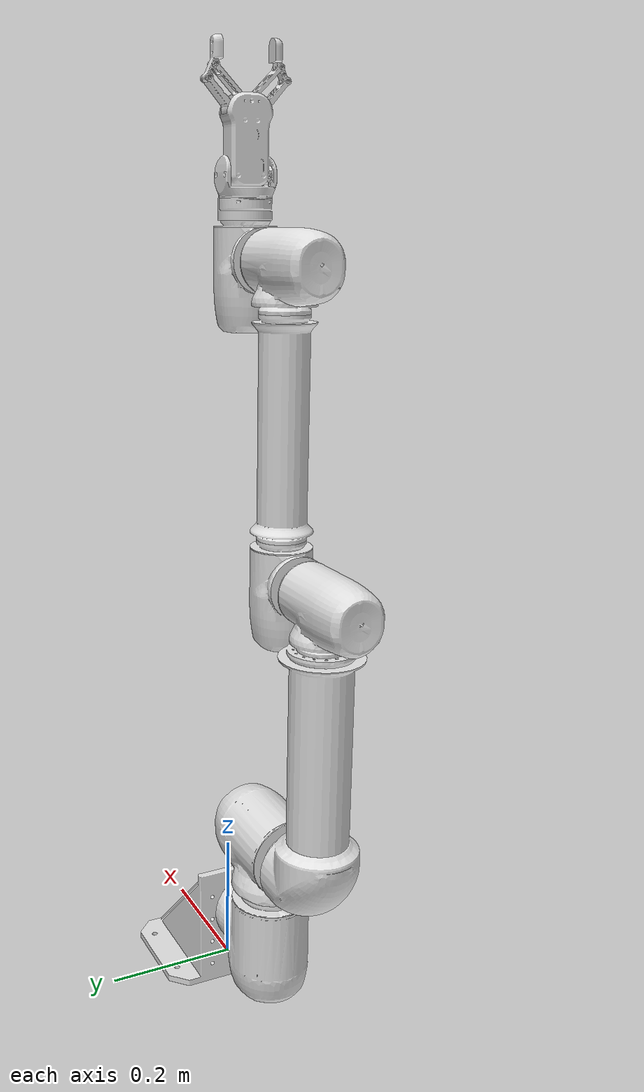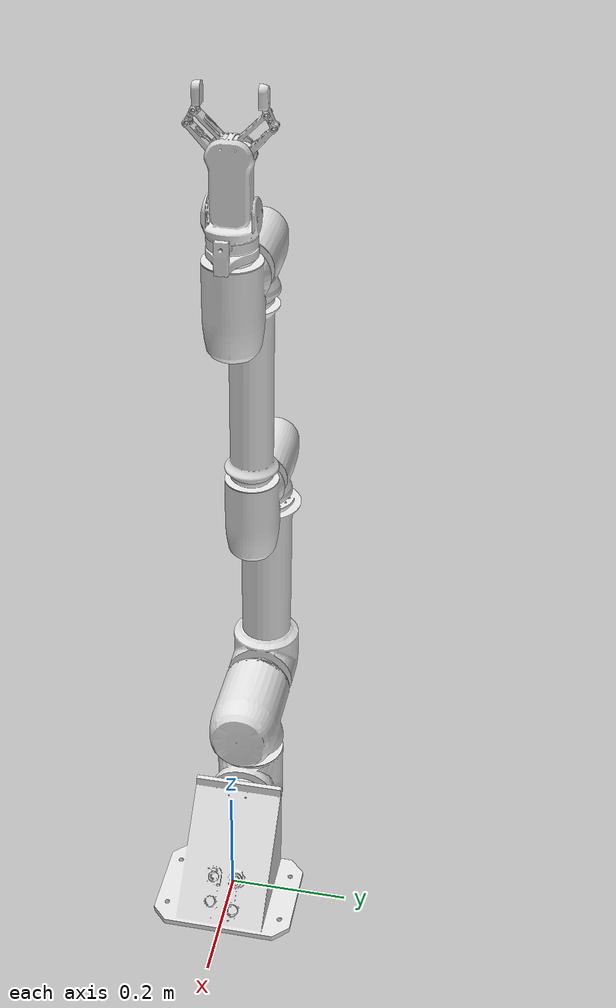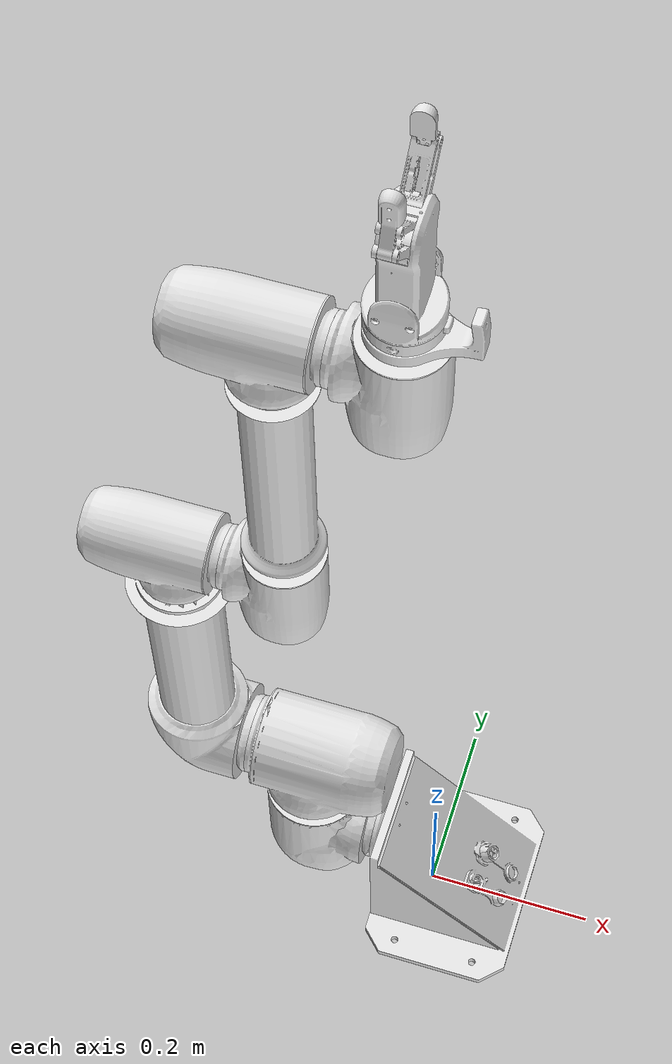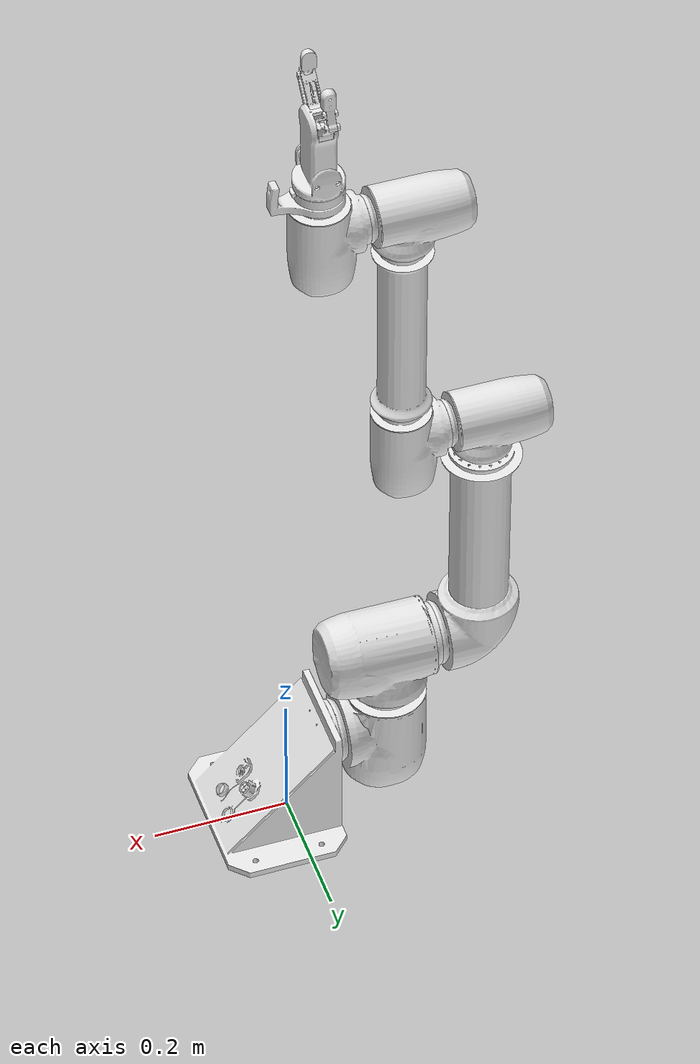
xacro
<?xml version="1.0"?>
<robot xmlns:xacro="http://www.ros.org/wiki/xacro" name="robco">
  <xacro:arg name="use_gazebo" default="true" />
  <xacro:arg name="initial_positions_file" default="$(find robco_description)/config/initial_positions.yaml" />

  <!-- Import Robot macro -->
  <xacro:include filename="$(find robco_description)/urdf/robco_description.xacro" />

  <!-- Import Ros2 Control description-->
  <xacro:include filename="$(find robco_description)/ros2_control/robco.ros2_control.xacro" />
  <xacro:robco_ros2_control name="RobCoControl"
    initial_positions_file="$(arg initial_positions_file)" use_gazebo="$(arg use_gazebo)" />

  <xacro:if value="$(arg use_gazebo)">
    <!-- Import Gazebo Classic definitions + plugin -->
    <xacro:include filename="$(find robco_description)/gazebo/robco_gazebo.xacro" />
    <xacro:robco_gazebo/>
  </xacro:if>
</robot>

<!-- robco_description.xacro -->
<robot name="robco" xmlns:xacro="http://www.ros.org/wiki/xacro">
    <xacro:include filename="$(find robco_description)/urdf/robco_modules.xacro"/>
    <link name="world" />

    <joint name="world__base" type="fixed">
                <origin rpy="0 0 0" xyz="0 0 0.132"/>
                <parent link="world"/>
                <child link="base"/>
    </joint>

    <xacro:robco_module_0106 name="base" next="drive1"/>
    <xacro:robco_module_0088 name="drive1" next="drive2"/>
    <xacro:robco_module_0089 name="drive2" next="link0"/>
    <xacro:robco_module_0078 name="link0" next="drive3"/>
    <xacro:robco_module_0085 name="drive3" next="drive4"/>
    <xacro:robco_module_0085 name="drive4" next="link1"/>
    <xacro:robco_module_0007 name="link1" next="drive5"/>
    <xacro:robco_module_0085 name="drive5" next="drive6"/>
    <xacro:robco_module_0085 name="drive6" next="robco_handeye"/>

    <xacro:include filename="$(find robco_description)/urdf/handeye.xacro"/>
    <xacro:handeye ns="robco" rpy="0 0 0" connected_to="" safety_distance="0.00"/>

    <xacro:include filename="$(find robco_description)/urdf/rg2.xacro"/>
    <xacro:hand ns="robco" xyz="0 0 0" connected_to="robco_handeye_flange" safety_distance="0.0"/>
</robot>

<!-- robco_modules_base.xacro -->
<robot xmlns:xacro="http://www.ros.org/wiki/xacro">
    <xacro:property name="description_package" value="$(find robco_description)" />
    <xacro:include filename="$(find robco_description)/urdf/inertials.xacro"/>

    <xacro:macro name="robco_base_module" params="name mesh_filename tf_rpy tf_xyz next">
        <link name="${name}">
            <visual>
                <geometry>
                    <mesh filename="file://${description_package}/meshes/${mesh_filename}" />
                </geometry>
                <material name="Gray">
                    <color rgba="0.9 0.9 0.9 1.0" />
                </material>
            </visual>
            <collision>
                <geometry>
                    <mesh filename="file://${description_package}/meshes/${mesh_filename}" />
                </geometry>
            </collision>
            <xacro:inertials mesh_filename="${mesh_filename}"/>
        </link>

        <xacro:if value="${next != ''}">
            <joint name="${name}__${next}" type="fixed">
                <origin rpy="${tf_rpy}" xyz="${tf_xyz}" />
                <parent link="${name}" />
                <child link="${next}" />
            </joint>
        </xacro:if>
    </xacro:macro>

    <xacro:macro name="robco_link_module" params="name mesh_filename tf_rpy tf_xyz next">
        <link name="${name}">
            <visual>
                <geometry>
                    <mesh filename="file://${description_package}/meshes/${mesh_filename}" />
                </geometry>
                <material name="Gray">
                    <color rgba="0.9 0.9 0.9 1.0" />
                </material>
            </visual>
            <collision>
                <geometry>
                    <mesh filename="file://${description_package}/meshes/${mesh_filename}" />
                </geometry>
            </collision>
            <xacro:inertials mesh_filename="${mesh_filename}"/>
        </link>

        <xacro:if value="${next != ''}">
            <joint name="${name}__${next}" type="fixed">
                <origin rpy="${tf_rpy}" xyz="${tf_xyz}" />
                <parent link="${name}" />
                <child link="${next}" />
            </joint>
        </xacro:if>
    </xacro:macro>

    <xacro:macro name="robco_drive_module"
        params="name proximal_mesh_filename distal_mesh_filename proximal_tf_rpy proximal_tf_xyz distal_tf_rpy distal_tf_xyz lim_lower:=-4.7124 lim_upper:=4.7124 next">
        <!-- proximal link, calle ${name} to keep compatibility with next=... parameter -->
        <link name="${name}">
            <visual>
                <geometry>
                    <mesh
                        filename="file://${description_package}/meshes/${proximal_mesh_filename}" />
                </geometry>
                <material name="Gray">
                    <color rgba="0.9 0.9 0.9 1.0" />
                </material>
            </visual>
            <collision>
                <geometry>
                    <mesh
                        filename="file://${description_package}/meshes/${proximal_mesh_filename}" />
                </geometry>
            </collision>
            <xacro:inertials mesh_filename="${proximal_mesh_filename}"/>
        </link>

        <joint name="${name}__${name}_shaft" type="fixed">
            <origin rpy="${proximal_tf_rpy}" xyz="${proximal_tf_xyz}" />
            <parent link="${name}" />
            <child link="${name}_shaft" />
        </joint>

        <link name="${name}_shaft">
            <xacro:inertials mesh_filename=""/>
        </link>

        <joint name="${name}_joint" type="revolute">
            <origin rpy="${distal_tf_rpy}" xyz="${distal_tf_xyz}" />
            <axis xyz="0 0 1" />
            <limit lower="${lim_lower}" upper="${lim_upper}" effort="0" velocity="4.25" />
            <parent link="${name}_shaft" />
            <child link="${name}_distal" />
        </joint>

        <link name="${name}_distal">
            <visual>
                <geometry>
                    <mesh filename="file://${description_package}/meshes/${distal_mesh_filename}" />
                </geometry>
                <material name="Gray">
                    <color rgba="0.9 0.9 0.9 1.0" />
                </material>
            </visual>
            <collision>
                <geometry>
                    <mesh filename="file://${description_package}/meshes/${distal_mesh_filename}" />
                </geometry>
            </collision>
            <xacro:inertials mesh_filename="${distal_mesh_filename}"/>
        </link>

        <xacro:if value="${next != ''}">
            <joint name="${name}_distal__${next}" type="fixed">
                <parent link="${name}_distal" />
                <child link="${next}" />
            </joint>
        </xacro:if>
    </xacro:macro>

    <xacro:macro name="robco_end_effector" params="name mesh_filename tf_rpy tf_xyz">
        <link name="${name}">
            <visual>
                <geometry>
                    <mesh filename="file://${description_package}/meshes/${mesh_filename}" />
                </geometry>
                <material name="Red">
                    <color rgba="1.0 0 0 1.0" />
                </material>
            </visual>
            <collision>
                <geometry>
                    <mesh filename="file://${description_package}/meshes/${mesh_filename}" />
                </geometry>
            </collision>
            <xacro:inertials mesh_filename="${mesh_filename}"/>
        </link>
    </xacro:macro>

</robot>

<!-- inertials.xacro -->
<robot xmlns:xacro="http://www.ros.org/wiki/xacro">

  <xacro:macro name="inertials" params="mesh_filename">
    <xacro:if value="${mesh_filename == ''}">
      <inertial>
        <origin xyz="0 0 0" rpy="0 0 0"/>
        <mass value="0.001"/>
        <inertia ixx="0.0" ixy="0.0" ixz="0.0" iyy="0.0" iyz="0.0" izz="0.0"/>
      </inertial>
    </xacro:if>

    <xacro:include filename="$(find robco_description)/urdf/inertia/0031_L86-55_inertials.xacro"/>
    <xacro:inertials_0031_L86-55 mesh_filename="${mesh_filename}"/>
    <xacro:include filename="$(find robco_description)/urdf/inertia/0007_I86-300_inertials.xacro"/>
    <xacro:inertials_0007_I86-300 mesh_filename="${mesh_filename}"/>
    <xacro:include filename="$(find robco_description)/urdf/inertia/0032_L86-383_inertials.xacro"/>
    <xacro:inertials_0032_L86-383 mesh_filename="${mesh_filename}"/>
    <xacro:include filename="$(find robco_description)/urdf/inertia/0080_I148-600_inertials.xacro"/>
    <xacro:inertials_0080_I148-600 mesh_filename="${mesh_filename}"/>
    <xacro:include filename="$(find robco_description)/urdf/inertia/0082_L148-470_inertials.xacro"/>
    <xacro:inertials_0082_L148-470 mesh_filename="${mesh_filename}"/>
    <xacro:include filename="$(find robco_description)/urdf/inertia/0040_D86_inertials.xacro"/>
    <xacro:inertials_0040_D86 mesh_filename="${mesh_filename}"/>
    <xacro:include filename="$(find robco_description)/urdf/inertia/0060_L148-600_inertials.xacro"/>
    <xacro:inertials_0060_L148-600 mesh_filename="${mesh_filename}"/>
    <xacro:include filename="$(find robco_description)/urdf/inertia/0924_E-trical-weights-only-1000g_inertials.xacro"/>
    <xacro:inertials_0924_E-trical-weights-only-1000g mesh_filename="${mesh_filename}"/>
    <xacro:include filename="$(find robco_description)/urdf/inertia/0037_D86_inertials.xacro"/>
    <xacro:inertials_0037_D86 mesh_filename="${mesh_filename}"/>
    <xacro:include filename="$(find robco_description)/urdf/inertia/0807_E-Zimmer-GEP5008IO-00-A_ultrasonic_inertials.xacro"/>
    <xacro:inertials_0807_E-Zimmer-GEP5008IO-00-A_ultrasonic mesh_filename="${mesh_filename}"/>
    <xacro:include filename="$(find robco_description)/urdf/inertia/0018_L86-700_inertials.xacro"/>
    <xacro:inertials_0018_L86-700 mesh_filename="${mesh_filename}"/>
    <xacro:include filename="$(find robco_description)/urdf/inertia/0903_E-gimatic-vacuum_inertials.xacro"/>
    <xacro:inertials_0903_E-gimatic-vacuum mesh_filename="${mesh_filename}"/>
    <xacro:include filename="$(find robco_description)/urdf/inertia/0100_BD116-KM_inertials.xacro"/>
    <xacro:inertials_0100_BD116-KM mesh_filename="${mesh_filename}"/>
    <xacro:include filename="$(find robco_description)/urdf/inertia/0093_I86-305_inertials.xacro"/>
    <xacro:inertials_0093_I86-305 mesh_filename="${mesh_filename}"/>
    <xacro:include filename="$(find robco_description)/urdf/inertia/0930_E-trical-weights-only-4000g_inertials.xacro"/>
    <xacro:inertials_0930_E-trical-weights-only-4000g mesh_filename="${mesh_filename}"/>
    <xacro:include filename="$(find robco_description)/urdf/inertia/0025_L116-448_inertials.xacro"/>
    <xacro:inertials_0025_L116-448 mesh_filename="${mesh_filename}"/>
    <xacro:include filename="$(find robco_description)/urdf/inertia/handeye_inertials.xacro"/>
    <xacro:inertials_handeye mesh_filename="${mesh_filename}"/>
    <xacro:include filename="$(find robco_description)/urdf/inertia/0045_D116_inertials.xacro"/>
    <xacro:inertials_0045_D116 mesh_filename="${mesh_filename}"/>
    <xacro:include filename="$(find robco_description)/urdf/inertia/0022_L86-283_inertials.xacro"/>
    <xacro:inertials_0022_L86-283 mesh_filename="${mesh_filename}"/>
    <xacro:include filename="$(find robco_description)/urdf/inertia/0912_E-trical-with-indicators-1000g_inertials.xacro"/>
    <xacro:inertials_0912_E-trical-with-indicators-1000g mesh_filename="${mesh_filename}"/>
    <xacro:include filename="$(find robco_description)/urdf/inertia/8001_C116-86_inertials.xacro"/>
    <xacro:inertials_8001_C116-86 mesh_filename="${mesh_filename}"/>
    <xacro:include filename="$(find robco_description)/urdf/inertia/0092_I86-270_inertials.xacro"/>
    <xacro:inertials_0092_I86-270 mesh_filename="${mesh_filename}"/>
    <xacro:include filename="$(find robco_description)/urdf/inertia/0097_D86-KM_inertials.xacro"/>
    <xacro:inertials_0097_D86-KM mesh_filename="${mesh_filename}"/>
    <xacro:include filename="$(find robco_description)/urdf/inertia/0028_L116-600_inertials.xacro"/>
    <xacro:inertials_0028_L116-600 mesh_filename="${mesh_filename}"/>
    <xacro:include filename="$(find robco_description)/urdf/inertia/0809_E-Gimatic-SZ32-NC_inertials.xacro"/>
    <xacro:inertials_0809_E-Gimatic-SZ32-NC mesh_filename="${mesh_filename}"/>
    <xacro:include filename="$(find robco_description)/urdf/inertia/0816_E-Profile-Clamp_inertials.xacro"/>
    <xacro:inertials_0816_E-Profile-Clamp mesh_filename="${mesh_filename}"/>
    <xacro:include filename="$(find robco_description)/urdf/inertia/0001_D86_inertials.xacro"/>
    <xacro:inertials_0001_D86 mesh_filename="${mesh_filename}"/>
    <xacro:include filename="$(find robco_description)/urdf/inertia/0803_E-Weiss-cr_easy_cig_200-030_inertials.xacro"/>
    <xacro:inertials_0803_E-Weiss-cr_easy_cig_200-030 mesh_filename="${mesh_filename}"/>
    <xacro:include filename="$(find robco_description)/urdf/inertia/0084_L148-870_inertials.xacro"/>
    <xacro:inertials_0084_L148-870 mesh_filename="${mesh_filename}"/>
    <xacro:include filename="$(find robco_description)/urdf/inertia/0073_L86-340_inertials.xacro"/>
    <xacro:inertials_0073_L86-340 mesh_filename="${mesh_filename}"/>
    <xacro:include filename="$(find robco_description)/urdf/inertia/0925_E-trical-weights-only-1500g_inertials.xacro"/>
    <xacro:inertials_0925_E-trical-weights-only-1500g mesh_filename="${mesh_filename}"/>
    <xacro:include filename="$(find robco_description)/urdf/inertia/0091_D148_inertials.xacro"/>
    <xacro:inertials_0091_D148 mesh_filename="${mesh_filename}"/>
    <xacro:include filename="$(find robco_description)/urdf/inertia/0807_E-Zimmer-GEP5008IO-00-A_inertials.xacro"/>
    <xacro:inertials_0807_E-Zimmer-GEP5008IO-00-A mesh_filename="${mesh_filename}"/>
    <xacro:include filename="$(find robco_description)/urdf/inertia/0095_I116-305_inertials.xacro"/>
    <xacro:inertials_0095_I116-305 mesh_filename="${mesh_filename}"/>
    <xacro:include filename="$(find robco_description)/urdf/inertia/0811_E-Schmalz-ECBPi_inertials.xacro"/>
    <xacro:inertials_0811_E-Schmalz-ECBPi mesh_filename="${mesh_filename}"/>
    <xacro:include filename="$(find robco_description)/urdf/inertia/0068_I116-400_inertials.xacro"/>
    <xacro:inertials_0068_I116-400 mesh_filename="${mesh_filename}"/>
    <xacro:include filename="$(find robco_description)/urdf/inertia/0030_L116-200_inertials.xacro"/>
    <xacro:inertials_0030_L116-200 mesh_filename="${mesh_filename}"/>
    <xacro:include filename="$(find robco_description)/urdf/inertia/0916_E-trical-with-indicators-3000g_inertials.xacro"/>
    <xacro:inertials_0916_E-trical-with-indicators-3000g mesh_filename="${mesh_filename}"/>
    <xacro:include filename="$(find robco_description)/urdf/inertia/0094_L86-165_inertials.xacro"/>
    <xacro:inertials_0094_L86-165 mesh_filename="${mesh_filename}"/>
    <xacro:include filename="$(find robco_description)/urdf/inertia/0106_B116-90deg_inertials.xacro"/>
    <xacro:inertials_0106_B116-90deg mesh_filename="${mesh_filename}"/>
    <xacro:include filename="$(find robco_description)/urdf/inertia/0081_I148-400_inertials.xacro"/>
    <xacro:inertials_0081_I148-400 mesh_filename="${mesh_filename}"/>
    <xacro:include filename="$(find robco_description)/urdf/inertia/0012_L86-150_inertials.xacro"/>
    <xacro:inertials_0012_L86-150 mesh_filename="${mesh_filename}"/>
    <xacro:include filename="$(find robco_description)/urdf/inertia/0805_E-simple-vacuum-90deg_inertials.xacro"/>
    <xacro:inertials_0805_E-simple-vacuum-90deg mesh_filename="${mesh_filename}"/>
    <xacro:include filename="$(find robco_description)/urdf/inertia/0078_L116-350_inertials.xacro"/>
    <xacro:inertials_0078_L116-350 mesh_filename="${mesh_filename}"/>
    <xacro:include filename="$(find robco_description)/urdf/inertia/0029_L116-800_inertials.xacro"/>
    <xacro:inertials_0029_L116-800 mesh_filename="${mesh_filename}"/>
    <xacro:include filename="$(find robco_description)/urdf/inertia/0915_E-trical-with-indicators-2500g_inertials.xacro"/>
    <xacro:inertials_0915_E-trical-with-indicators-2500g mesh_filename="${mesh_filename}"/>
    <xacro:include filename="$(find robco_description)/urdf/inertia/8004_C148_inertials.xacro"/>
    <xacro:inertials_8004_C148 mesh_filename="${mesh_filename}"/>
    <xacro:include filename="$(find robco_description)/urdf/inertia/0907_E-perfecdos_inertials.xacro"/>
    <xacro:inertials_0907_E-perfecdos mesh_filename="${mesh_filename}"/>
    <xacro:include filename="$(find robco_description)/urdf/inertia/0027_L116-500_inertials.xacro"/>
    <xacro:inertials_0027_L116-500 mesh_filename="${mesh_filename}"/>
    <xacro:include filename="$(find robco_description)/urdf/inertia/0024_L116-1000_inertials.xacro"/>
    <xacro:inertials_0024_L116-1000 mesh_filename="${mesh_filename}"/>
    <xacro:include filename="$(find robco_description)/urdf/inertia/0932_E-trical-weights-only-5000g_inertials.xacro"/>
    <xacro:inertials_0932_E-trical-weights-only-5000g mesh_filename="${mesh_filename}"/>
    <xacro:include filename="$(find robco_description)/urdf/inertia/0933_E-trical-weights-only-5500g_inertials.xacro"/>
    <xacro:inertials_0933_E-trical-weights-only-5500g mesh_filename="${mesh_filename}"/>
    <xacro:include filename="$(find robco_description)/urdf/inertia/0802_E-Zimmer-GEP2006IO-00-B_inertials.xacro"/>
    <xacro:inertials_0802_E-Zimmer-GEP2006IO-00-B mesh_filename="${mesh_filename}"/>
    <xacro:include filename="$(find robco_description)/urdf/inertia/0003_D116_inertials.xacro"/>
    <xacro:inertials_0003_D116 mesh_filename="${mesh_filename}"/>
    <xacro:include filename="$(find robco_description)/urdf/inertia/0927_E-trical-weights-only-2500g_inertials.xacro"/>
    <xacro:inertials_0927_E-trical-weights-only-2500g mesh_filename="${mesh_filename}"/>
    <xacro:include filename="$(find robco_description)/urdf/inertia/0076_I116-600_inertials.xacro"/>
    <xacro:inertials_0076_I116-600 mesh_filename="${mesh_filename}"/>
    <xacro:include filename="$(find robco_description)/urdf/inertia/0046_D148_inertials.xacro"/>
    <xacro:inertials_0046_D148 mesh_filename="${mesh_filename}"/>
    <xacro:include filename="$(find robco_description)/urdf/inertia/0041_D86_inertials.xacro"/>
    <xacro:inertials_0041_D86 mesh_filename="${mesh_filename}"/>
    <xacro:include filename="$(find robco_description)/urdf/inertia/0088_D116_inertials.xacro"/>
    <xacro:inertials_0088_D116 mesh_filename="${mesh_filename}"/>
    <xacro:include filename="$(find robco_description)/urdf/inertia/0066_D116_inertials.xacro"/>
    <xacro:inertials_0066_D116 mesh_filename="${mesh_filename}"/>
    <xacro:include filename="$(find robco_description)/urdf/inertia/0002_D116_inertials.xacro"/>
    <xacro:inertials_0002_D116 mesh_filename="${mesh_filename}"/>
    <xacro:include filename="$(find robco_description)/urdf/inertia/0087_D86_inertials.xacro"/>
    <xacro:inertials_0087_D86 mesh_filename="${mesh_filename}"/>
    <xacro:include filename="$(find robco_description)/urdf/inertia/0117_L148-720_inertials.xacro"/>
    <xacro:inertials_0117_L148-720 mesh_filename="${mesh_filename}"/>
    <xacro:include filename="$(find robco_description)/urdf/inertia/0800_E-generic-IO_inertials.xacro"/>
    <xacro:inertials_0800_E-generic-IO mesh_filename="${mesh_filename}"/>
    <xacro:include filename="$(find robco_description)/urdf/inertia/0022_L86-286_inertials.xacro"/>
    <xacro:inertials_0022_L86-286 mesh_filename="${mesh_filename}"/>
    <xacro:include filename="$(find robco_description)/urdf/inertia/0047_L148-1000_inertials.xacro"/>
    <xacro:inertials_0047_L148-1000 mesh_filename="${mesh_filename}"/>
    <xacro:include filename="$(find robco_description)/urdf/inertia/0013_L86-200_inertials.xacro"/>
    <xacro:inertials_0013_L86-200 mesh_filename="${mesh_filename}"/>
    <xacro:include filename="$(find robco_description)/urdf/inertia/0039_D86_inertials.xacro"/>
    <xacro:inertials_0039_D86 mesh_filename="${mesh_filename}"/>
    <xacro:include filename="$(find robco_description)/urdf/inertia/0010_I86-600_inertials.xacro"/>
    <xacro:inertials_0010_I86-600 mesh_filename="${mesh_filename}"/>
    <xacro:include filename="$(find robco_description)/urdf/inertia/0052_I148-800_inertials.xacro"/>
    <xacro:inertials_0052_I148-800 mesh_filename="${mesh_filename}"/>
    <xacro:include filename="$(find robco_description)/urdf/inertia/0071_I86-310_inertials.xacro"/>
    <xacro:inertials_0071_I86-310 mesh_filename="${mesh_filename}"/>
    <xacro:include filename="$(find robco_description)/urdf/inertia/0038_D116_inertials.xacro"/>
    <xacro:inertials_0038_D116 mesh_filename="${mesh_filename}"/>
    <xacro:include filename="$(find robco_description)/urdf/inertia/0006_I86-200_inertials.xacro"/>
    <xacro:inertials_0006_I86-200 mesh_filename="${mesh_filename}"/>
    <xacro:include filename="$(find robco_description)/urdf/inertia/0016_L86-500_inertials.xacro"/>
    <xacro:inertials_0016_L86-500 mesh_filename="${mesh_filename}"/>
    <xacro:include filename="$(find robco_description)/urdf/inertia/0011_I86-700_inertials.xacro"/>
    <xacro:inertials_0011_I86-700 mesh_filename="${mesh_filename}"/>
    <xacro:include filename="$(find robco_description)/urdf/inertia/0815_E-ISO50-IO-generic_inertials.xacro"/>
    <xacro:inertials_0815_E-ISO50-IO-generic mesh_filename="${mesh_filename}"/>
    <xacro:include filename="$(find robco_description)/urdf/inertia/0917_E-trical-with-indicators-3500g_inertials.xacro"/>
    <xacro:inertials_0917_E-trical-with-indicators-3500g mesh_filename="${mesh_filename}"/>
    <xacro:include filename="$(find robco_description)/urdf/inertia/0005_I86-150_inertials.xacro"/>
    <xacro:inertials_0005_I86-150 mesh_filename="${mesh_filename}"/>
    <xacro:include filename="$(find robco_description)/urdf/inertia/0940_E-EoPTestLoadDevice-4000g_inertials.xacro"/>
    <xacro:inertials_0940_E-EoPTestLoadDevice-4000g mesh_filename="${mesh_filename}"/>
    <xacro:include filename="$(find robco_description)/urdf/inertia/0069_I86-160_inertials.xacro"/>
    <xacro:inertials_0069_I86-160 mesh_filename="${mesh_filename}"/>
    <xacro:include filename="$(find robco_description)/urdf/inertia/0808_E-simple-vacuum-180deg_inertials.xacro"/>
    <xacro:inertials_0808_E-simple-vacuum-180deg mesh_filename="${mesh_filename}"/>
    <xacro:include filename="$(find robco_description)/urdf/inertia/0801_E-Schmalz-ECBPMi_inertials.xacro"/>
    <xacro:inertials_0801_E-Schmalz-ECBPMi mesh_filename="${mesh_filename}"/>
    <xacro:include filename="$(find robco_description)/urdf/inertia/0020_L116-400_inertials.xacro"/>
    <xacro:inertials_0020_L116-400 mesh_filename="${mesh_filename}"/>
    <xacro:include filename="$(find robco_description)/urdf/inertia/0015_L86-400_inertials.xacro"/>
    <xacro:inertials_0015_L86-400 mesh_filename="${mesh_filename}"/>
    <xacro:include filename="$(find robco_description)/urdf/inertia/0026_L116-348_inertials.xacro"/>
    <xacro:inertials_0026_L116-348 mesh_filename="${mesh_filename}"/>
    <xacro:include filename="$(find robco_description)/urdf/inertia/0033_I86-141_inertials.xacro"/>
    <xacro:inertials_0033_I86-141 mesh_filename="${mesh_filename}"/>
    <xacro:include filename="$(find robco_description)/urdf/inertia/0921_E-trical-with-indicators-5500g_inertials.xacro"/>
    <xacro:inertials_0921_E-trical-with-indicators-5500g mesh_filename="${mesh_filename}"/>
    <xacro:include filename="$(find robco_description)/urdf/inertia/0079_L116-650_inertials.xacro"/>
    <xacro:inertials_0079_L116-650 mesh_filename="${mesh_filename}"/>
    <xacro:include filename="$(find robco_description)/urdf/inertia/0090_L148-710_inertials.xacro"/>
    <xacro:inertials_0090_L148-710 mesh_filename="${mesh_filename}"/>
    <xacro:include filename="$(find robco_description)/urdf/inertia/8003_C148-116_inertials.xacro"/>
    <xacro:inertials_8003_C148-116 mesh_filename="${mesh_filename}"/>
    <xacro:include filename="$(find robco_description)/urdf/inertia/0931_E-trical-weights-only-4500g_inertials.xacro"/>
    <xacro:inertials_0931_E-trical-weights-only-4500g mesh_filename="${mesh_filename}"/>
    <xacro:include filename="$(find robco_description)/urdf/inertia/0064_D86_inertials.xacro"/>
    <xacro:inertials_0064_D86 mesh_filename="${mesh_filename}"/>
    <xacro:include filename="$(find robco_description)/urdf/inertia/0085_D86_inertials.xacro"/>
    <xacro:inertials_0085_D86 mesh_filename="${mesh_filename}"/>
    <xacro:include filename="$(find robco_description)/urdf/inertia/0055_L148-800_inertials.xacro"/>
    <xacro:inertials_0055_L148-800 mesh_filename="${mesh_filename}"/>
    <xacro:include filename="$(find robco_description)/urdf/inertia/0913_E-trical-with-indicators-1500g_inertials.xacro"/>
    <xacro:inertials_0913_E-trical-with-indicators-1500g mesh_filename="${mesh_filename}"/>
    <xacro:include filename="$(find robco_description)/urdf/inertia/0810_E-Zimmer-GEP2006IO-45-B_ultrasonic_inertials.xacro"/>
    <xacro:inertials_0810_E-Zimmer-GEP2006IO-45-B_ultrasonic mesh_filename="${mesh_filename}"/>
    <xacro:include filename="$(find robco_description)/urdf/inertia/0059_I116-650_inertials.xacro"/>
    <xacro:inertials_0059_I116-650 mesh_filename="${mesh_filename}"/>
    <xacro:include filename="$(find robco_description)/urdf/inertia/0109_B116-minus90deg_inertials.xacro"/>
    <xacro:inertials_0109_B116-minus90deg mesh_filename="${mesh_filename}"/>
    <xacro:include filename="$(find robco_description)/urdf/inertia/0914_E-trical-with-indicators-2000g_inertials.xacro"/>
    <xacro:inertials_0914_E-trical-with-indicators-2000g mesh_filename="${mesh_filename}"/>
    <xacro:include filename="$(find robco_description)/urdf/inertia/0043_D86_inertials.xacro"/>
    <xacro:inertials_0043_D86 mesh_filename="${mesh_filename}"/>
    <xacro:include filename="$(find robco_description)/urdf/inertia/0096_L86-82_inertials.xacro"/>
    <xacro:inertials_0096_L86-82 mesh_filename="${mesh_filename}"/>
    <xacro:include filename="$(find robco_description)/urdf/inertia/0813_E-Weiss-cr_easy_cig_200-030_ultrasonic_inertials.xacro"/>
    <xacro:inertials_0813_E-Weiss-cr_easy_cig_200-030_ultrasonic mesh_filename="${mesh_filename}"/>
    <xacro:include filename="$(find robco_description)/urdf/inertia/0929_E-trical-weights-only-3500g_inertials.xacro"/>
    <xacro:inertials_0929_E-trical-weights-only-3500g mesh_filename="${mesh_filename}"/>
    <xacro:include filename="$(find robco_description)/urdf/inertia/0923_E-trical-weights-only-500g_inertials.xacro"/>
    <xacro:inertials_0923_E-trical-weights-only-500g mesh_filename="${mesh_filename}"/>
    <xacro:include filename="$(find robco_description)/urdf/inertia/0103_B86_inertials.xacro"/>
    <xacro:inertials_0103_B86 mesh_filename="${mesh_filename}"/>
    <xacro:include filename="$(find robco_description)/urdf/inertia/0063_L148-400_inertials.xacro"/>
    <xacro:inertials_0063_L148-400 mesh_filename="${mesh_filename}"/>
    <xacro:include filename="$(find robco_description)/urdf/inertia/0035_L86-336_inertials.xacro"/>
    <xacro:inertials_0035_L86-336 mesh_filename="${mesh_filename}"/>
    <xacro:include filename="$(find robco_description)/urdf/inertia/0008_I86-400_inertials.xacro"/>
    <xacro:inertials_0008_I86-400 mesh_filename="${mesh_filename}"/>
    <xacro:include filename="$(find robco_description)/urdf/inertia/0918_E-trical-with-indicators-4000g_inertials.xacro"/>
    <xacro:inertials_0918_E-trical-with-indicators-4000g mesh_filename="${mesh_filename}"/>
    <xacro:include filename="$(find robco_description)/urdf/inertia/0049_I116-1000_inertials.xacro"/>
    <xacro:inertials_0049_I116-1000 mesh_filename="${mesh_filename}"/>
    <xacro:include filename="$(find robco_description)/urdf/inertia/0021_L86-183_inertials.xacro"/>
    <xacro:inertials_0021_L86-183 mesh_filename="${mesh_filename}"/>
    <xacro:include filename="$(find robco_description)/urdf/inertia/0057_L148-550_inertials.xacro"/>
    <xacro:inertials_0057_L148-550 mesh_filename="${mesh_filename}"/>
    <xacro:include filename="$(find robco_description)/urdf/inertia/0083_L148-670_inertials.xacro"/>
    <xacro:inertials_0083_L148-670 mesh_filename="${mesh_filename}"/>
    <xacro:include filename="$(find robco_description)/urdf/inertia/0904_E-ECBPMi-fraunhofer_inertials.xacro"/>
    <xacro:inertials_0904_E-ECBPMi-fraunhofer mesh_filename="${mesh_filename}"/>
    <xacro:include filename="$(find robco_description)/urdf/inertia/0021_L86-186_inertials.xacro"/>
    <xacro:inertials_0021_L86-186 mesh_filename="${mesh_filename}"/>
    <xacro:include filename="$(find robco_description)/urdf/inertia/0099_I86-220_inertials.xacro"/>
    <xacro:inertials_0099_I86-220 mesh_filename="${mesh_filename}"/>
    <xacro:include filename="$(find robco_description)/urdf/inertia/0051_I116-800_inertials.xacro"/>
    <xacro:inertials_0051_I116-800 mesh_filename="${mesh_filename}"/>
    <xacro:include filename="$(find robco_description)/urdf/inertia/0941_E-Schunk-EMH-RP-045-B_inertials.xacro"/>
    <xacro:inertials_0941_E-Schunk-EMH-RP-045-B mesh_filename="${mesh_filename}"/>
    <xacro:include filename="$(find robco_description)/urdf/inertia/0812_E-ISO50-IO-3xM8_inertials.xacro"/>
    <xacro:inertials_0812_E-ISO50-IO-3xM8 mesh_filename="${mesh_filename}"/>
    <xacro:include filename="$(find robco_description)/urdf/inertia/0104_B86-90deg_inertials.xacro"/>
    <xacro:inertials_0104_B86-90deg mesh_filename="${mesh_filename}"/>
    <xacro:include filename="$(find robco_description)/urdf/inertia/0017_L86-600_inertials.xacro"/>
    <xacro:inertials_0017_L86-600 mesh_filename="${mesh_filename}"/>
    <xacro:include filename="$(find robco_description)/urdf/inertia/0919_E-trical-with-indicators-4500g_inertials.xacro"/>
    <xacro:inertials_0919_E-trical-with-indicators-4500g mesh_filename="${mesh_filename}"/>
    <xacro:include filename="$(find robco_description)/urdf/inertia/0806_E-Piab-VGS4005-SX12_inertials.xacro"/>
    <xacro:inertials_0806_E-Piab-VGS4005-SX12 mesh_filename="${mesh_filename}"/>
    <xacro:include filename="$(find robco_description)/urdf/inertia/0056_I116-500_inertials.xacro"/>
    <xacro:inertials_0056_I116-500 mesh_filename="${mesh_filename}"/>
    <xacro:include filename="$(find robco_description)/urdf/inertia/0911_E-trical-with-indicators-500g_inertials.xacro"/>
    <xacro:inertials_0911_E-trical-with-indicators-500g mesh_filename="${mesh_filename}"/>
    <xacro:include filename="$(find robco_description)/urdf/inertia/0009_I86-500_inertials.xacro"/>
    <xacro:inertials_0009_I86-500 mesh_filename="${mesh_filename}"/>
    <xacro:include filename="$(find robco_description)/urdf/inertia/0070_L86-350_inertials.xacro"/>
    <xacro:inertials_0070_L86-350 mesh_filename="${mesh_filename}"/>
    <xacro:include filename="$(find robco_description)/urdf/inertia/0054_L116-300_inertials.xacro"/>
    <xacro:inertials_0054_L116-300 mesh_filename="${mesh_filename}"/>
    <xacro:include filename="$(find robco_description)/urdf/inertia/0118_L116-700_inertials.xacro"/>
    <xacro:inertials_0118_L116-700 mesh_filename="${mesh_filename}"/>
    <xacro:include filename="$(find robco_description)/urdf/inertia/0814_E-Schmalz-ECBPMi_ultrasonic_inertials.xacro"/>
    <xacro:inertials_0814_E-Schmalz-ECBPMi_ultrasonic mesh_filename="${mesh_filename}"/>
    <xacro:include filename="$(find robco_description)/urdf/inertia/0920_E-trical-with-indicators-5000g_inertials.xacro"/>
    <xacro:inertials_0920_E-trical-with-indicators-5000g mesh_filename="${mesh_filename}"/>
    <xacro:include filename="$(find robco_description)/urdf/inertia/0042_D86_inertials.xacro"/>
    <xacro:inertials_0042_D86 mesh_filename="${mesh_filename}"/>
    <xacro:include filename="$(find robco_description)/urdf/inertia/0906_E-gimatic-sz25-koch_inertials.xacro"/>
    <xacro:inertials_0906_E-gimatic-sz25-koch mesh_filename="${mesh_filename}"/>
    <xacro:include filename="$(find robco_description)/urdf/inertia/0098_D116-KM_inertials.xacro"/>
    <xacro:inertials_0098_D116-KM mesh_filename="${mesh_filename}"/>
    <xacro:include filename="$(find robco_description)/urdf/inertia/0112_D148-KM_inertials.xacro"/>
    <xacro:inertials_0112_D148-KM mesh_filename="${mesh_filename}"/>
    <xacro:include filename="$(find robco_description)/urdf/inertia/0067_D148_inertials.xacro"/>
    <xacro:inertials_0067_D148 mesh_filename="${mesh_filename}"/>
    <xacro:include filename="$(find robco_description)/urdf/inertia/0116_BD148-KM_inertials.xacro"/>
    <xacro:inertials_0116_BD148-KM mesh_filename="${mesh_filename}"/>
    <xacro:include filename="$(find robco_description)/urdf/inertia/0089_D116_inertials.xacro"/>
    <xacro:inertials_0089_D116 mesh_filename="${mesh_filename}"/>
    <xacro:include filename="$(find robco_description)/urdf/inertia/8000_C86_inertials.xacro"/>
    <xacro:inertials_8000_C86 mesh_filename="${mesh_filename}"/>
    <xacro:include filename="$(find robco_description)/urdf/inertia/0926_E-trical-weights-only-2000g_inertials.xacro"/>
    <xacro:inertials_0926_E-trical-weights-only-2000g mesh_filename="${mesh_filename}"/>
    <xacro:include filename="$(find robco_description)/urdf/inertia/0036_L86-250_inertials.xacro"/>
    <xacro:inertials_0036_L86-250 mesh_filename="${mesh_filename}"/>
    <xacro:include filename="$(find robco_description)/urdf/inertia/0110_B148-90deg_inertials.xacro"/>
    <xacro:inertials_0110_B148-90deg mesh_filename="${mesh_filename}"/>
    <xacro:include filename="$(find robco_description)/urdf/inertia/0086_D116_inertials.xacro"/>
    <xacro:inertials_0086_D116 mesh_filename="${mesh_filename}"/>
    <xacro:include filename="$(find robco_description)/urdf/inertia/0074_L86-440_inertials.xacro"/>
    <xacro:inertials_0074_L86-440 mesh_filename="${mesh_filename}"/>
    <xacro:include filename="$(find robco_description)/urdf/inertia/0061_D86_inertials.xacro"/>
    <xacro:inertials_0061_D86 mesh_filename="${mesh_filename}"/>
    <xacro:include filename="$(find robco_description)/urdf/inertia/8002_C116_inertials.xacro"/>
    <xacro:inertials_8002_C116 mesh_filename="${mesh_filename}"/>
    <xacro:include filename="$(find robco_description)/urdf/inertia/0058_I148-650_inertials.xacro"/>
    <xacro:inertials_0058_I148-650 mesh_filename="${mesh_filename}"/>
    <xacro:include filename="$(find robco_description)/urdf/inertia/0062_I116-750_inertials.xacro"/>
    <xacro:inertials_0062_I116-750 mesh_filename="${mesh_filename}"/>
    <xacro:include filename="$(find robco_description)/urdf/inertia/0053_I116-300_inertials.xacro"/>
    <xacro:inertials_0053_I116-300 mesh_filename="${mesh_filename}"/>
    <xacro:include filename="$(find robco_description)/urdf/inertia/0910_E-trical-with-indicators-0g_inertials.xacro"/>
    <xacro:inertials_0910_E-trical-with-indicators-0g mesh_filename="${mesh_filename}"/>
    <xacro:include filename="$(find robco_description)/urdf/inertia/0044_D116_inertials.xacro"/>
    <xacro:inertials_0044_D116 mesh_filename="${mesh_filename}"/>
    <xacro:include filename="$(find robco_description)/urdf/inertia/0075_I116-450_inertials.xacro"/>
    <xacro:inertials_0075_I116-450 mesh_filename="${mesh_filename}"/>
    <xacro:include filename="$(find robco_description)/urdf/inertia/0065_D86_inertials.xacro"/>
    <xacro:inertials_0065_D86 mesh_filename="${mesh_filename}"/>
    <xacro:include filename="$(find robco_description)/urdf/inertia/0014_L86-300_inertials.xacro"/>
    <xacro:inertials_0014_L86-300 mesh_filename="${mesh_filename}"/>
    <xacro:include filename="$(find robco_description)/urdf/inertia/hand_inertials.xacro"/>
    <xacro:inertials_hand mesh_filename="${mesh_filename}"/>
    <xacro:include filename="$(find robco_description)/urdf/inertia/0034_I86-350_inertials.xacro"/>
    <xacro:inertials_0034_I86-350 mesh_filename="${mesh_filename}"/>
    <xacro:include filename="$(find robco_description)/urdf/inertia/0023_I86-250_inertials.xacro"/>
    <xacro:inertials_0023_I86-250 mesh_filename="${mesh_filename}"/>
    <xacro:include filename="$(find robco_description)/urdf/inertia/0928_E-trical-weights-only-3000g_inertials.xacro"/>
    <xacro:inertials_0928_E-trical-weights-only-3000g mesh_filename="${mesh_filename}"/>
    <xacro:include filename="$(find robco_description)/urdf/inertia/0105_B116_inertials.xacro"/>
    <xacro:inertials_0105_B116 mesh_filename="${mesh_filename}"/>
    <xacro:include filename="$(find robco_description)/urdf/inertia/0050_I148-1000_inertials.xacro"/>
    <xacro:inertials_0050_I148-1000 mesh_filename="${mesh_filename}"/>
    <xacro:include filename="$(find robco_description)/urdf/inertia/0111_B148_inertials.xacro"/>
    <xacro:inertials_0111_B148 mesh_filename="${mesh_filename}"/>
    <xacro:include filename="$(find robco_description)/urdf/inertia/0113_I86-Robominds-Camera-Module_inertials.xacro"/>
    <xacro:inertials_0113_I86-Robominds-Camera-Module mesh_filename="${mesh_filename}"/>
    <xacro:include filename="$(find robco_description)/urdf/inertia/0108_B86-minus90deg_inertials.xacro"/>
    <xacro:inertials_0108_B86-minus90deg mesh_filename="${mesh_filename}"/>
    <xacro:include filename="$(find robco_description)/urdf/inertia/0804_E-simple-ISO50_inertials.xacro"/>
    <xacro:inertials_0804_E-simple-ISO50 mesh_filename="${mesh_filename}"/>
    <xacro:include filename="$(find robco_description)/urdf/inertia/0072_L86-240_inertials.xacro"/>
    <xacro:inertials_0072_L86-240 mesh_filename="${mesh_filename}"/>
    <xacro:include filename="$(find robco_description)/urdf/inertia/0922_E-trical-weights-only-0g_inertials.xacro"/>
    <xacro:inertials_0922_E-trical-weights-only-0g mesh_filename="${mesh_filename}"/>
  </xacro:macro>
</robot>

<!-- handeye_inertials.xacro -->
<robot xmlns:xacro="http://www.ros.org/wiki/xacro">

  <xacro:macro name="inertials_handeye" params="mesh_filename">
    <xacro:if value="${mesh_filename == 'handeye/d415_mount.stl'}">
      <inertial>
        <origin xyz="0.017331179920744594 -6.9859368933445664e-06 0.00699831217108041" rpy="0 0 0"/>
        <mass value="0.14889855270564462"/>
        <inertia ixx="1.930796890250573e-08" ixy="1.4601129993841727e-11" ixz="-5.285930176148672e-09" iyy="5.638993902270557e-08" iyz="1.8534167231416504e-12" izz="6.830946879372428e-08"/>
      </inertial>
    </xacro:if>

  </xacro:macro>
</robot>

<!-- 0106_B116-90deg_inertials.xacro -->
<robot xmlns:xacro="http://www.ros.org/wiki/xacro">

  <xacro:macro name="inertials_0106_B116-90deg" params="mesh_filename">
    <xacro:if value="${mesh_filename == '0106_B116-90deg/B116-90deg.stl'}">
      <inertial>
        <origin xyz="0.000761225262356612 -4.2648095643983235e-05 -0.0791996216486049" rpy="0 0 0"/>
        <mass value="3.206759091443682"/>
        <inertia ixx="7.380822569252255e-06" ixy="-8.775745620176088e-10" ixz="1.8895434638255175e-06" iyy="7.085734597435252e-06" iyz="3.250827778370946e-11" izz="7.414161610857824e-06"/>
      </inertial>
    </xacro:if>

    <xacro:if value="${mesh_filename == '0106_B116-90deg/B116-90deg_convdec.stl'}">
      <inertial>
        <origin xyz="0.0038839138517079777 0.0002777201682092498 -0.06647604572720602" rpy="0 0 0"/>
        <mass value="11.77682696523645"/>
        <inertia ixx="2.4464190839207997e-05" ixy="-5.588009503102053e-08" ixz="4.430925750005298e-06" iyy="1.8745704912295823e-05" iyz="-3.0095221263165725e-08" izz="2.455060599327575e-05"/>
      </inertial>
    </xacro:if>

  </xacro:macro>
</robot>

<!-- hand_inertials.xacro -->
<robot xmlns:xacro="http://www.ros.org/wiki/xacro">

  <xacro:macro name="inertials_hand" params="mesh_filename">
    <xacro:if value="${mesh_filename == 'hand/rg2_leftfinger.stl'}">
      <inertial>
        <origin xyz="-0.012538804229414615 -0.009347257693549145 -2.139888374039822e-06" rpy="0 0 0"/>
        <mass value="0.04388153230189781"/>
        <inertia ixx="3.687999163948921e-09" ixy="-2.2916390936980127e-09" ixz="-6.14367479313516e-13" iyy="4.925604222734754e-09" iyz="-4.664830982347308e-13" izz="7.437703124358777e-09"/>
      </inertial>
    </xacro:if>

    <xacro:if value="${mesh_filename == 'hand/rg2_palm.stl'}">
      <inertial>
        <origin xyz="0.00023776533240715687 -0.00024069078287711204 0.06553664684930406" rpy="0 0 0"/>
        <mass value="0.6606033236911241"/>
        <inertia ixx="4.19261474004337e-07" ixy="5.156330107411555e-11" ixz="2.973218353901564e-09" iyy="3.886382768596564e-07" iyz="8.532410222859945e-11" izz="1.1002815802879352e-07"/>
      </inertial>
    </xacro:if>

    <xacro:if value="${mesh_filename == 'hand/rg2_rightfinger_tip.stl'}">
      <inertial>
        <origin xyz="-0.028594043160480916 -0.011427585568581264 -5.108416708299076e-06" rpy="0 0 0"/>
        <mass value="0.02185183635049713"/>
        <inertia ixx="4.239003069062995e-10" ixy="-4.6118321726722907e-10" ixz="-2.79514714187447e-15" iyy="1.9445133774546496e-09" iyz="1.3301992553862598e-15" izz="1.9886889729237107e-09"/>
      </inertial>
    </xacro:if>

    <xacro:if value="${mesh_filename == 'hand/quick_changer.stl'}">
      <inertial>
        <origin xyz="-0.0007119605316491822 -0.0017346194310531352 0.004055122511198636" rpy="0 0 0"/>
        <mass value="0.05914783610600074"/>
        <inertia ixx="1.0142839018399624e-08" ixy="3.096847733693732e-11" ixz="1.3175115101934055e-10" iyy="7.290679183561598e-09" iyz="1.7072365801120128e-10" izz="1.6830472370871266e-08"/>
      </inertial>
    </xacro:if>

    <xacro:if value="${mesh_filename == 'hand/rg2_rightfinger.stl'}">
      <inertial>
        <origin xyz="-0.012509800723200029 0.00892792196236047 -8.205369640465648e-06" rpy="0 0 0"/>
        <mass value="0.04388153240005676"/>
        <inertia ixx="3.700925985416756e-09" ixy="2.2924134778229315e-09" ixz="6.112164371942019e-13" iyy="4.910509415020544e-09" iyz="-4.4746785548405376e-13" izz="7.435535261702032e-09"/>
      </inertial>
    </xacro:if>

    <xacro:if value="${mesh_filename == 'hand/rg2_leftfinger_tip.stl'}">
      <inertial>
        <origin xyz="-0.028697478448842604 0.01108435042316252 -5.254462570761894e-06" rpy="0 0 0"/>
        <mass value="0.021851824733015137"/>
        <inertia ixx="4.2389999877922116e-10" ixy="4.61182957100733e-10" ixz="2.4729347619998283e-15" iyy="1.9445124963040523e-09" iyz="1.460291472536548e-15" izz="1.988687861148581e-09"/>
      </inertial>
    </xacro:if>

  </xacro:macro>
</robot>

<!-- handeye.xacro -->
<robot xmlns:xacro="http://www.ros.org/wiki/xacro" name="robco">
  <xacro:property name="description_package" value="$(find robco_description)" />
  <xacro:macro name="handeye"
    params="connected_to:='' ns:='' rpy:='0 0 0' xyz:='0 0 0' safety_distance:=0">
    <xacro:unless value="${not connected_to}">
      <joint name="${ns}_handeye_joint" type="fixed">
        <parent link="${connected_to}" />
        <child link="${ns}_handeye" />
        <origin xyz="${xyz}" rpy="${rpy}" />
      </joint>
    </xacro:unless>

    <link name="${ns}_handeye">
      <visual>
        <geometry>
          <mesh filename="file://${description_package}/meshes/handeye/d415_mount.stl" />
        </geometry>
        <material name="Gray">
          <color rgba="0.9 0.9 0.9 1.0" />
        </material>
      </visual>
      <collision>
        <origin xyz="0 0 0.006" rpy="0 0 0" />
        <geometry>
          <cylinder radius="${0.038+safety_distance}" length="0.012" />
        </geometry>
      </collision>
      <collision>
        <origin xyz="0.0375 0 0.0055" rpy="0 0 0" />
        <geometry>
          <box size="${0.075+safety_distance} ${0.03+safety_distance} ${0.012+safety_distance}" />
        </geometry>
      </collision>
      <xacro:inertials mesh_filename="handeye/d415_mount.stl"></xacro:inertials>
    </link>

    <joint name="${ns}_handeye_flange_joint" type="fixed">
      <parent link="${ns}_handeye" />
      <child link="${ns}_handeye_flange" />
      <origin xyz="0 0 0.012" rpy="0 0 0" />
    </joint>

    <link name="${ns}_handeye_flange"></link>
  </xacro:macro>
</robot>

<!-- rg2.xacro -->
<robot xmlns:xacro="http://www.ros.org/wiki/xacro" name="robco">
  <xacro:property name="upper_gripper" value="0.5" />
  <xacro:property name="lower_gripper" value="0.77" />
  <xacro:property name="description_package" value="$(find robco_description)" />

  <xacro:macro name="hand"
    params="connected_to:='' ns:='' rpy:='0 0 0' xyz:='0 0 0' safety_distance:=0">
    <xacro:unless value="${not connected_to}">
      <joint name="${ns}_hand_joint" type="fixed">
        <parent link="${connected_to}" />
        <child link="${ns}_hand" />
        <origin xyz="${xyz}" rpy="${rpy}" />
      </joint>
    </xacro:unless>

    <link name="${ns}_hand">
      <visual>
        <geometry>
          <mesh filename="file://${description_package}/meshes/hand/quick_changer.stl" />
        </geometry>
        <material name="Gray">
          <color rgba="0.9 0.9 0.9 1.0" />
        </material>
      </visual>
      <collision>
        <origin xyz="0 0 0.006" rpy="0 0 0" />
        <geometry>
          <cylinder radius="${0.038+safety_distance}" length="0.012" />
        </geometry>
      </collision>
      <xacro:inertials mesh_filename="hand/quick_changer.stl"></xacro:inertials>
    </link>

    <joint name="${ns}_palmjoint" type="fixed">
      <parent link="${ns}_hand" />
      <child link="${ns}_palm" />
      <origin xyz="0 0 0" rpy="0 0 0" />
    </joint>

    <link name="${ns}_palm">
      <visual>
        <geometry>
          <mesh filename="file://${description_package}/meshes/hand/rg2_palm.stl" />
        </geometry>
        <material name="Gray">
          <color rgba="0.9 0.9 0.9 1.0" />
        </material>
      </visual>
      <collision>
        <origin xyz="0 0 ${0.13/2+0.02}" rpy="0 0 0" />
        <geometry>
          <box size="${2*0.018+safety_distance} ${0.036*2+safety_distance} ${0.13+safety_distance}" />
        </geometry>
      </collision>
      <xacro:inertials mesh_filename="hand/rg2_palm.stl"></xacro:inertials>
    </link>

    <joint name="${ns}_left_finger_joint" type="revolute">
      <safety_controller k_position="100.0" k_velocity="40.0" soft_lower_limit="${-lower_gripper}"
        soft_upper_limit="${upper_gripper}" />
      <parent link="${ns}_palm" />
      <child link="${ns}_left_finger" />
      <origin xyz="0 -0.017 0.123" rpy="0 ${pi/2} 0" />
      <axis xyz="0 0 1" />
      <limit effort="40" lower="${-lower_gripper}" upper="${upper_gripper}" velocity="3.14" />
    </joint>

    <joint name="${ns}_right_finger_joint" type="revolute">
      <safety_controller k_position="100.0" k_velocity="40.0" soft_lower_limit="${-upper_gripper}"
        soft_upper_limit="${lower_gripper}" />
      <mimic joint="${ns}_left_finger_joint" multiplier="-1.0" />
      <parent link="${ns}_palm" />
      <child link="${ns}_right_finger" />
      <origin xyz="0 0.017 0.123" rpy="0 ${pi/2} 0" />
      <axis xyz="0 0 1" />
      <limit effort="40" lower="${-upper_gripper}" upper="${lower_gripper}" velocity="3.14" />
    </joint>

    <!-- MISSING COLLISION -->
    <link name="${ns}_left_finger">
      <visual>
        <geometry>
          <mesh filename="file://${description_package}/meshes/hand/rg2_leftfinger.stl" />
        </geometry>
        <material name="Gray">
          <color rgba="0.9 0.9 0.9 1.0" />
        </material>
      </visual>
      <xacro:inertials mesh_filename="hand/rg2_leftfinger.stl"></xacro:inertials>
    </link>

    <!-- MISSING COLLISION -->
    <link name="${ns}_right_finger">
      <visual>
        <geometry>
          <mesh filename="file://${description_package}/meshes/hand/rg2_rightfinger.stl" />
        </geometry>
        <material name="Gray">
          <color rgba="0.9 0.9 0.9 1.0" />
        </material>
      </visual>
      <xacro:inertials mesh_filename="hand/rg2_rightfinger.stl"></xacro:inertials>
    </link>

    <joint name="${ns}_left_fingertip_joint" type="revolute">
      <safety_controller k_position="100.0" k_velocity="40.0" soft_lower_limit="${-upper_gripper}"
        soft_upper_limit="${lower_gripper}" />
      <parent link="${ns}_left_finger" />
      <child link="${ns}_left_fingertip" />
      <origin xyz="-0.0385 -0.03966 0" rpy="0 0 0" />
      <axis xyz="0 0 1" />
      <mimic joint="${ns}_left_finger_joint" multiplier="-1.0" />
      <limit effort="40" lower="${-lower_gripper}" upper="${upper_gripper}" velocity="3.14" />
    </joint>

    <joint name="${ns}_right_fingertip_joint" type="revolute">
      <safety_controller k_position="100.0" k_velocity="40.0" soft_lower_limit="${-upper_gripper}"
        soft_upper_limit="${lower_gripper}" />
      <parent link="${ns}_right_finger" />
      <child link="${ns}_right_fingertip" />
      <origin xyz="-0.0385 0.03966 0" rpy="0 0 0" />
      <axis xyz="0 0 1" />
      <mimic joint="${ns}_right_finger_joint" multiplier="-1.0" />
      <limit effort="40" lower="${-upper_gripper}" upper="${lower_gripper}" velocity="3.14" />
    </joint>

    <!-- MISSING COLLISION -->
    <link name="${ns}_left_fingertip">
      <visual>
        <geometry>
          <mesh filename="file://${description_package}/meshes/hand/rg2_leftfinger_tip.stl" />
        </geometry>
        <material name="Gray">
          <color rgba="0.9 0.9 0.9 1.0" />
        </material>
      </visual>
      <xacro:inertials mesh_filename="hand/rg2_leftfinger_tip.stl"></xacro:inertials>
    </link>
    <!-- MISSING COLLISION -->
    <link name="${ns}_right_fingertip">
      <visual>
        <geometry>
          <mesh filename="file://${description_package}/meshes/hand/rg2_rightfinger_tip.stl" />
        </geometry>
        <material name="Gray">
          <color rgba="0.9 0.9 0.9 1.0" />
        </material>
      </visual>
      <xacro:inertials mesh_filename="hand/rg2_rightfinger_tip.stl"></xacro:inertials>

    </link>

    <joint name="${ns}_hand_tcp_joint" type="fixed">
      <origin xyz="0 0 0.2" rpy="0 0 0" />
      <parent link="${ns}_hand" />
      <child link="${ns}_hand_tcp" />
    </joint>

    <link name="${ns}_hand_tcp" />
  </xacro:macro>
</robot>
